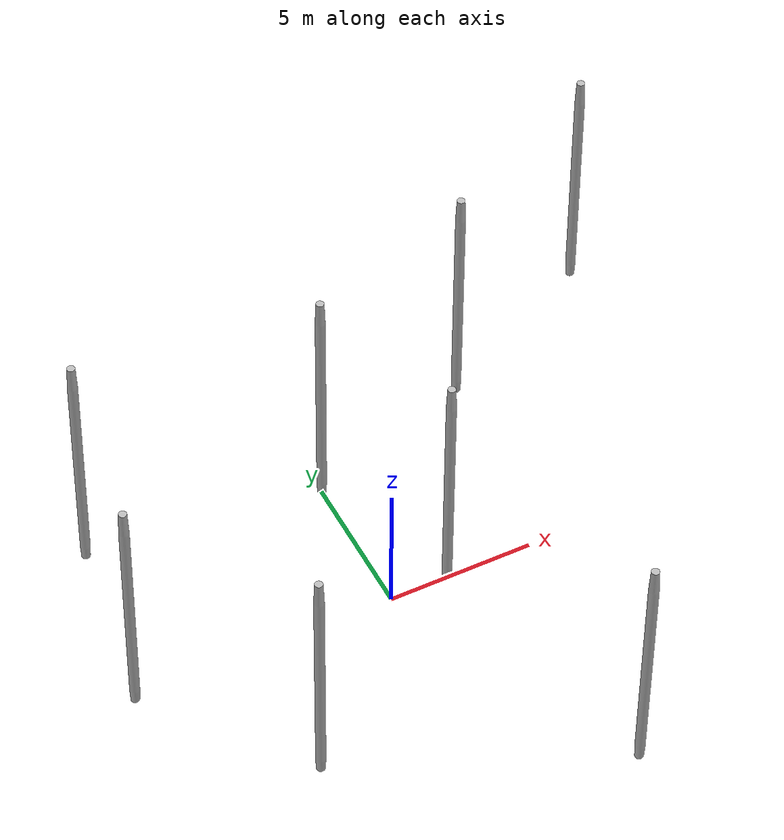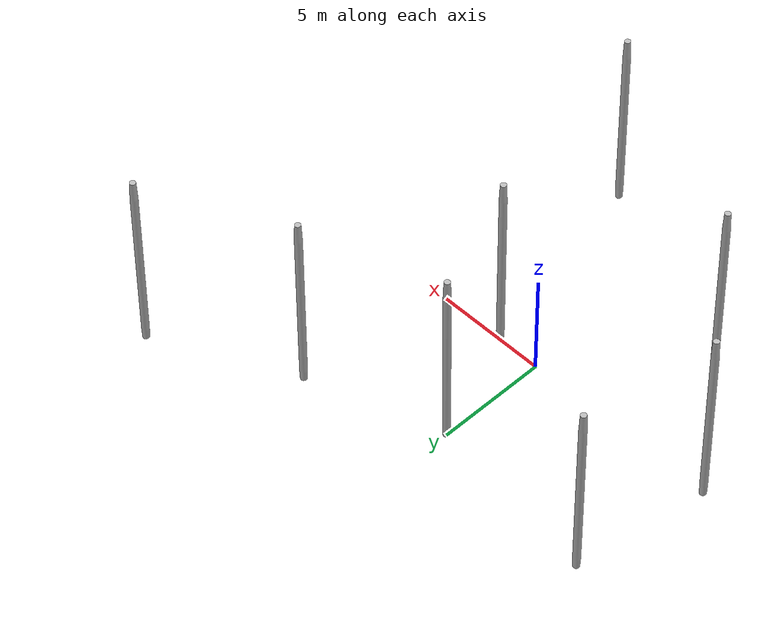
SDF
<sdf version="1.4">
 <world name="default">
  <scene><ambient>0.5 0.5 0.5 1</ambient><background>0.5 0.5 0.5 1</background><shadows>false</shadows></scene>
  <plugin name="ros_interface_plugin" filename="librotors_gazebo_ros_interface_plugin.so"/>
  <plugin name="gazebo_octomap" filename="librotors_gazebo_octomap_plugin.so"/>
  <physics type="ode">
   <gravity>0 0 -9.81</gravity>
   <ode>
    <solver><type>quick</type><iters>1000</iters><sor>1.3</sor></solver>
    <constraints>
     <cfm>0.0</cfm>
     <erp>0.2</erp>
     <contact_max_correcting_vel>100.0</contact_max_correcting_vel>
     <contact_surface_layer>0.01</contact_surface_layer>
    </constraints>
   </ode>
   <real_time_update_rate>100</real_time_update_rate>
   <real_time_factor>1</real_time_factor>
   <max_step_size>0.01</max_step_size>
  </physics>
  <light name="directional_light_1" type="directional">
   <cast_shadows>false</cast_shadows>
   <pose>0 0 30 0.1 0.1 0</pose>
   <diffuse>1.0 1.0 1.0 1</diffuse>
   <specular>.1 .1 .1 1</specular>
   <attenuation><range>300</range></attenuation>
   <direction>0.1 0.1 -1</direction>
  </light>
  <include><name>barrel_110l</name><pose>-9 0.0 0.0  0.0 0.0 0.0</pose><uri>model://barrel_110l</uri></include>
  <include>
   <name>barrel_110l.001</name>
   <pose>-8 6 0.0  0.0 0.0 0.0</pose>
   <uri>model://barrel_110l</uri>
  </include>
  <include><name>barrel_110l.002</name><pose>2 0 0.0  0.0 0.0 0.0</pose><uri>model://barrel_110l</uri></include>
  <include><name>barrel_110l.003</name><pose>6 7 0.0  0.0 0.0 0.0</pose><uri>model://barrel_110l</uri></include>
  <include>
   <name>barrel_110l.004</name>
   <pose>4 -9 0.0  0.0 0.0 0.0</pose>
   <uri>model://barrel_110l</uri>
  </include>
  <include>
   <name>barrel_110l.006</name>
   <pose>12 10 0.0  0.0 0.0 0.0</pose>
   <uri>model://barrel_110l</uri>
  </include>
  <include>
   <name>barrel_110l.007</name>
   <pose>0  5 0.0  0.0 0.0 0.0</pose>
   <uri>model://barrel_110l</uri>
  </include>
  <include>
   <name>barrel_110l.008</name>
   <pose>-5 -5 0.0  0.0 0.0 0.0</pose>
   <uri>model://barrel_110l</uri>
  </include>
 </world>
</sdf>

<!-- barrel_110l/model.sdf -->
<sdf version="1.4">
  <!--Generated by blend2world.py-->
    <model name="barel_110l">
      <pose>0.0 0.0 0.0  0.0 0.0 0.0</pose>
      <static>true</static>
      <link name="body">
        <collision name="collision">
          <geometry>
            <mesh>
              <uri>model://barrel_110l/meshes/barrel_110l.dae</uri>
              <scale>1 1 15</scale>
            </mesh>
          </geometry>
        </collision>
        <visual name="visual">
          <geometry>
            <mesh>
              <uri>model://barrel_110l/meshes/barrel_110l.dae</uri>
              <scale>1 1 15</scale>
            </mesh>
          </geometry>
	  <material>
            <script>
              <uri>model://barrel_110l/textures/barrel_110l.jpg</uri>
            </script>
          </material>
        </visual>
      </link>
    </model>
</sdf>
